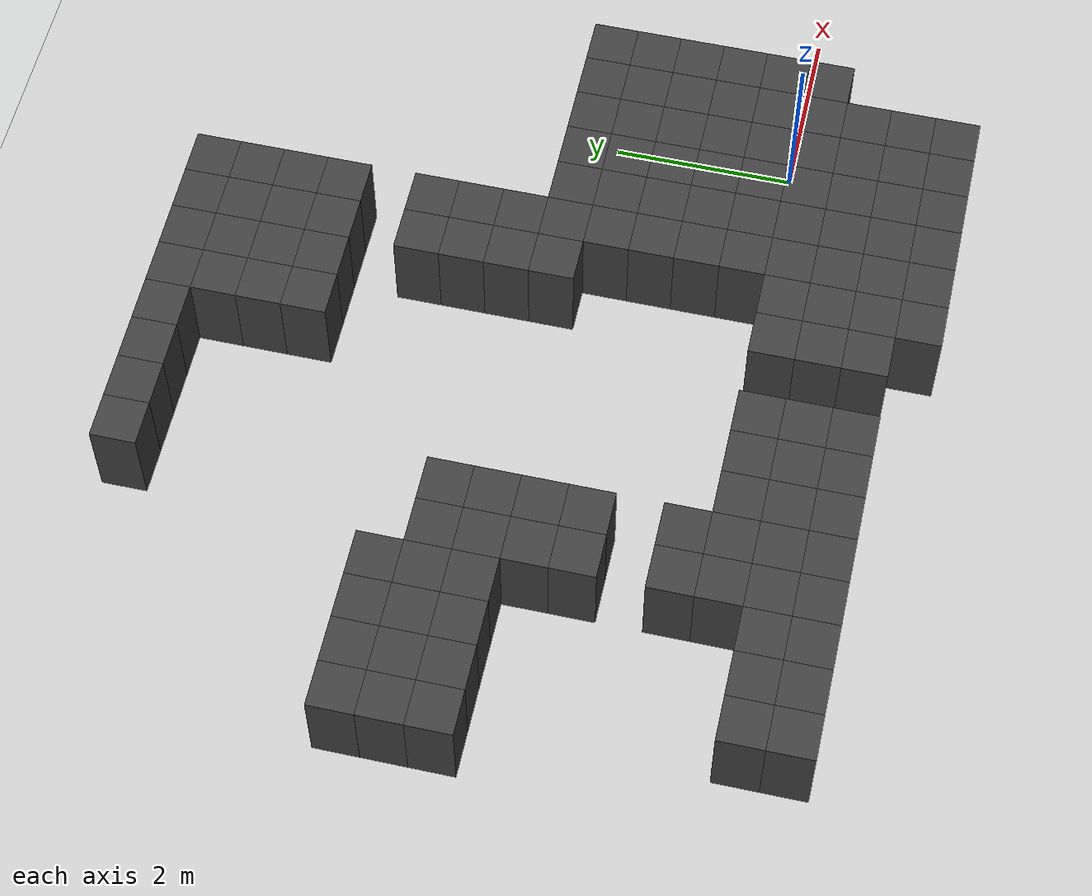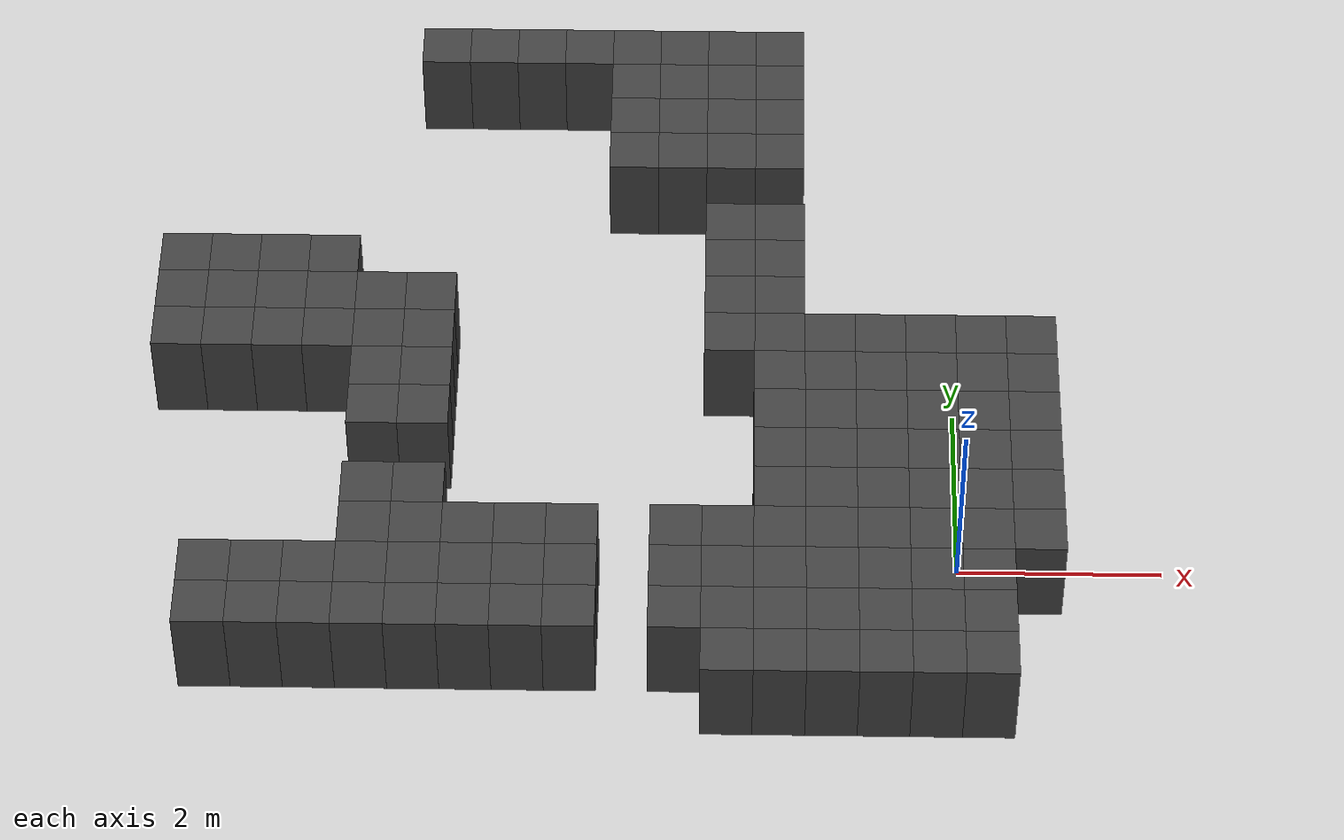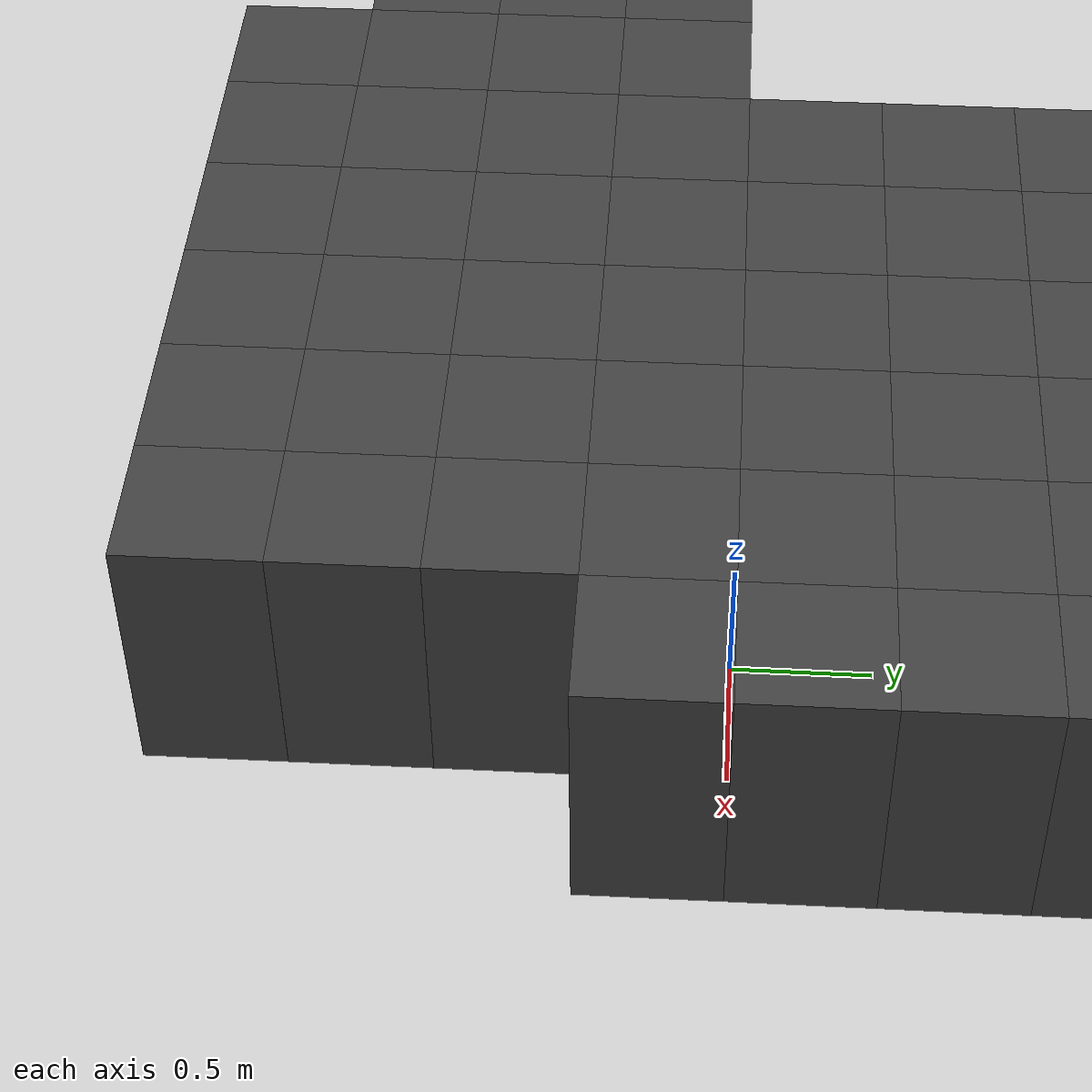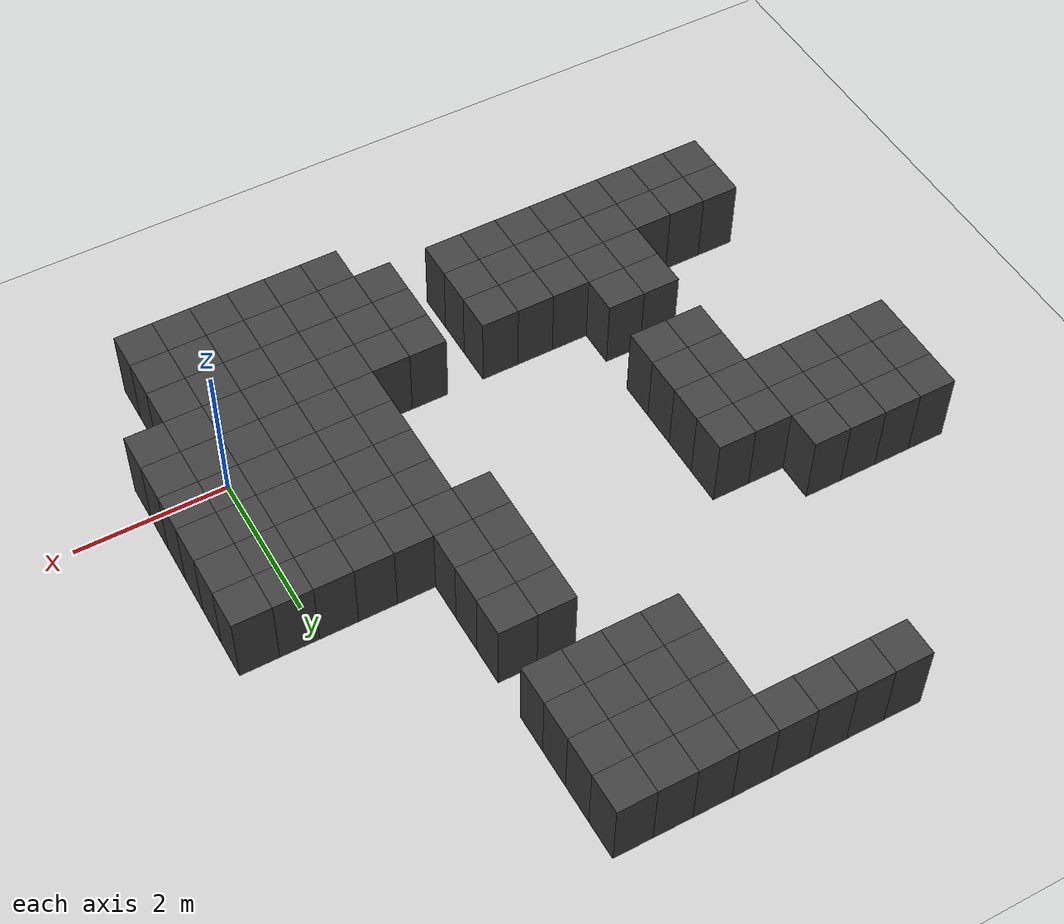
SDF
<sdf version="1.7">
 <world name="map_14980">
  <model name="ground_plane">
   <static>true</static>
   <link name="link">
    <collision name="collision">
     <geometry><plane><normal>0 0 1</normal><size>200 200</size></plane></geometry>
    </collision>
    <visual name="visual">
     <geometry><plane><normal>0 0 1</normal><size>200 200</size></plane></geometry>
     <material><ambient>0.8 0.8 0.8 1</ambient><diffuse>0.8 0.8 0.8 1</diffuse></material>
    </visual>
   </link>
  </model>
  <model name="maze_environment">
   <static>true</static>
   <link name="wall_469">
    <pose>-5.250 6.250 0.500 0 0 0</pose>
    <collision name="col"><geometry><box><size>0.5 0.5 1.0</size></box></geometry></collision>
    <visual name="vis">
     <geometry><box><size>0.5 0.5 1.0</size></box></geometry>
     <material><ambient>0.15 0.15 0.15 1</ambient><diffuse>0.25 0.25 0.25 1</diffuse></material>
    </visual>
   </link>
   <link name="wall_470">
    <pose>-4.750 6.250 0.500 0 0 0</pose>
    <collision name="col"><geometry><box><size>0.5 0.5 1.0</size></box></geometry></collision>
    <visual name="vis">
     <geometry><box><size>0.5 0.5 1.0</size></box></geometry>
     <material><ambient>0.15 0.15 0.15 1</ambient><diffuse>0.25 0.25 0.25 1</diffuse></material>
    </visual>
   </link>
   <link name="wall_471">
    <pose>-4.250 6.250 0.500 0 0 0</pose>
    <collision name="col"><geometry><box><size>0.5 0.5 1.0</size></box></geometry></collision>
    <visual name="vis">
     <geometry><box><size>0.5 0.5 1.0</size></box></geometry>
     <material><ambient>0.15 0.15 0.15 1</ambient><diffuse>0.25 0.25 0.25 1</diffuse></material>
    </visual>
   </link>
   <link name="wall_472">
    <pose>-3.750 6.250 0.500 0 0 0</pose>
    <collision name="col"><geometry><box><size>0.5 0.5 1.0</size></box></geometry></collision>
    <visual name="vis">
     <geometry><box><size>0.5 0.5 1.0</size></box></geometry>
     <material><ambient>0.15 0.15 0.15 1</ambient><diffuse>0.25 0.25 0.25 1</diffuse></material>
    </visual>
   </link>
   <link name="wall_473">
    <pose>-3.250 6.250 0.500 0 0 0</pose>
    <collision name="col"><geometry><box><size>0.5 0.5 1.0</size></box></geometry></collision>
    <visual name="vis">
     <geometry><box><size>0.5 0.5 1.0</size></box></geometry>
     <material><ambient>0.15 0.15 0.15 1</ambient><diffuse>0.25 0.25 0.25 1</diffuse></material>
    </visual>
   </link>
   <link name="wall_474">
    <pose>-2.750 6.250 0.500 0 0 0</pose>
    <collision name="col"><geometry><box><size>0.5 0.5 1.0</size></box></geometry></collision>
    <visual name="vis">
     <geometry><box><size>0.5 0.5 1.0</size></box></geometry>
     <material><ambient>0.15 0.15 0.15 1</ambient><diffuse>0.25 0.25 0.25 1</diffuse></material>
    </visual>
   </link>
   <link name="wall_475">
    <pose>-2.250 6.250 0.500 0 0 0</pose>
    <collision name="col"><geometry><box><size>0.5 0.5 1.0</size></box></geometry></collision>
    <visual name="vis">
     <geometry><box><size>0.5 0.5 1.0</size></box></geometry>
     <material><ambient>0.15 0.15 0.15 1</ambient><diffuse>0.25 0.25 0.25 1</diffuse></material>
    </visual>
   </link>
   <link name="wall_476">
    <pose>-1.750 6.250 0.500 0 0 0</pose>
    <collision name="col"><geometry><box><size>0.5 0.5 1.0</size></box></geometry></collision>
    <visual name="vis">
     <geometry><box><size>0.5 0.5 1.0</size></box></geometry>
     <material><ambient>0.15 0.15 0.15 1</ambient><diffuse>0.25 0.25 0.25 1</diffuse></material>
    </visual>
   </link>
   <link name="wall_506">
    <pose>-3.250 5.750 0.500 0 0 0</pose>
    <collision name="col"><geometry><box><size>0.5 0.5 1.0</size></box></geometry></collision>
    <visual name="vis">
     <geometry><box><size>0.5 0.5 1.0</size></box></geometry>
     <material><ambient>0.15 0.15 0.15 1</ambient><diffuse>0.25 0.25 0.25 1</diffuse></material>
    </visual>
   </link>
   <link name="wall_507">
    <pose>-2.750 5.750 0.500 0 0 0</pose>
    <collision name="col"><geometry><box><size>0.5 0.5 1.0</size></box></geometry></collision>
    <visual name="vis">
     <geometry><box><size>0.5 0.5 1.0</size></box></geometry>
     <material><ambient>0.15 0.15 0.15 1</ambient><diffuse>0.25 0.25 0.25 1</diffuse></material>
    </visual>
   </link>
   <link name="wall_508">
    <pose>-2.250 5.750 0.500 0 0 0</pose>
    <collision name="col"><geometry><box><size>0.5 0.5 1.0</size></box></geometry></collision>
    <visual name="vis">
     <geometry><box><size>0.5 0.5 1.0</size></box></geometry>
     <material><ambient>0.15 0.15 0.15 1</ambient><diffuse>0.25 0.25 0.25 1</diffuse></material>
    </visual>
   </link>
   <link name="wall_509">
    <pose>-1.750 5.750 0.500 0 0 0</pose>
    <collision name="col"><geometry><box><size>0.5 0.5 1.0</size></box></geometry></collision>
    <visual name="vis">
     <geometry><box><size>0.5 0.5 1.0</size></box></geometry>
     <material><ambient>0.15 0.15 0.15 1</ambient><diffuse>0.25 0.25 0.25 1</diffuse></material>
    </visual>
   </link>
   <link name="wall_539">
    <pose>-3.250 5.250 0.500 0 0 0</pose>
    <collision name="col"><geometry><box><size>0.5 0.5 1.0</size></box></geometry></collision>
    <visual name="vis">
     <geometry><box><size>0.5 0.5 1.0</size></box></geometry>
     <material><ambient>0.15 0.15 0.15 1</ambient><diffuse>0.25 0.25 0.25 1</diffuse></material>
    </visual>
   </link>
   <link name="wall_540">
    <pose>-2.750 5.250 0.500 0 0 0</pose>
    <collision name="col"><geometry><box><size>0.5 0.5 1.0</size></box></geometry></collision>
    <visual name="vis">
     <geometry><box><size>0.5 0.5 1.0</size></box></geometry>
     <material><ambient>0.15 0.15 0.15 1</ambient><diffuse>0.25 0.25 0.25 1</diffuse></material>
    </visual>
   </link>
   <link name="wall_541">
    <pose>-2.250 5.250 0.500 0 0 0</pose>
    <collision name="col"><geometry><box><size>0.5 0.5 1.0</size></box></geometry></collision>
    <visual name="vis">
     <geometry><box><size>0.5 0.5 1.0</size></box></geometry>
     <material><ambient>0.15 0.15 0.15 1</ambient><diffuse>0.25 0.25 0.25 1</diffuse></material>
    </visual>
   </link>
   <link name="wall_542">
    <pose>-1.750 5.250 0.500 0 0 0</pose>
    <collision name="col"><geometry><box><size>0.5 0.5 1.0</size></box></geometry></collision>
    <visual name="vis">
     <geometry><box><size>0.5 0.5 1.0</size></box></geometry>
     <material><ambient>0.15 0.15 0.15 1</ambient><diffuse>0.25 0.25 0.25 1</diffuse></material>
    </visual>
   </link>
   <link name="wall_566">
    <pose>-3.250 4.750 0.500 0 0 0</pose>
    <collision name="col"><geometry><box><size>0.5 0.5 1.0</size></box></geometry></collision>
    <visual name="vis">
     <geometry><box><size>0.5 0.5 1.0</size></box></geometry>
     <material><ambient>0.15 0.15 0.15 1</ambient><diffuse>0.25 0.25 0.25 1</diffuse></material>
    </visual>
   </link>
   <link name="wall_567">
    <pose>-2.750 4.750 0.500 0 0 0</pose>
    <collision name="col"><geometry><box><size>0.5 0.5 1.0</size></box></geometry></collision>
    <visual name="vis">
     <geometry><box><size>0.5 0.5 1.0</size></box></geometry>
     <material><ambient>0.15 0.15 0.15 1</ambient><diffuse>0.25 0.25 0.25 1</diffuse></material>
    </visual>
   </link>
   <link name="wall_568">
    <pose>-2.250 4.750 0.500 0 0 0</pose>
    <collision name="col"><geometry><box><size>0.5 0.5 1.0</size></box></geometry></collision>
    <visual name="vis">
     <geometry><box><size>0.5 0.5 1.0</size></box></geometry>
     <material><ambient>0.15 0.15 0.15 1</ambient><diffuse>0.25 0.25 0.25 1</diffuse></material>
    </visual>
   </link>
   <link name="wall_569">
    <pose>-1.750 4.750 0.500 0 0 0</pose>
    <collision name="col"><geometry><box><size>0.5 0.5 1.0</size></box></geometry></collision>
    <visual name="vis">
     <geometry><box><size>0.5 0.5 1.0</size></box></geometry>
     <material><ambient>0.15 0.15 0.15 1</ambient><diffuse>0.25 0.25 0.25 1</diffuse></material>
    </visual>
   </link>
   <link name="wall_615">
    <pose>-2.250 3.750 0.500 0 0 0</pose>
    <collision name="col"><geometry><box><size>0.5 0.5 1.0</size></box></geometry></collision>
    <visual name="vis">
     <geometry><box><size>0.5 0.5 1.0</size></box></geometry>
     <material><ambient>0.15 0.15 0.15 1</ambient><diffuse>0.25 0.25 0.25 1</diffuse></material>
    </visual>
   </link>
   <link name="wall_616">
    <pose>-1.750 3.750 0.500 0 0 0</pose>
    <collision name="col"><geometry><box><size>0.5 0.5 1.0</size></box></geometry></collision>
    <visual name="vis">
     <geometry><box><size>0.5 0.5 1.0</size></box></geometry>
     <material><ambient>0.15 0.15 0.15 1</ambient><diffuse>0.25 0.25 0.25 1</diffuse></material>
    </visual>
   </link>
   <link name="wall_641">
    <pose>-7.750 3.250 0.500 0 0 0</pose>
    <collision name="col"><geometry><box><size>0.5 0.5 1.0</size></box></geometry></collision>
    <visual name="vis">
     <geometry><box><size>0.5 0.5 1.0</size></box></geometry>
     <material><ambient>0.15 0.15 0.15 1</ambient><diffuse>0.25 0.25 0.25 1</diffuse></material>
    </visual>
   </link>
   <link name="wall_642">
    <pose>-7.250 3.250 0.500 0 0 0</pose>
    <collision name="col"><geometry><box><size>0.5 0.5 1.0</size></box></geometry></collision>
    <visual name="vis">
     <geometry><box><size>0.5 0.5 1.0</size></box></geometry>
     <material><ambient>0.15 0.15 0.15 1</ambient><diffuse>0.25 0.25 0.25 1</diffuse></material>
    </visual>
   </link>
   <link name="wall_643">
    <pose>-6.750 3.250 0.500 0 0 0</pose>
    <collision name="col"><geometry><box><size>0.5 0.5 1.0</size></box></geometry></collision>
    <visual name="vis">
     <geometry><box><size>0.5 0.5 1.0</size></box></geometry>
     <material><ambient>0.15 0.15 0.15 1</ambient><diffuse>0.25 0.25 0.25 1</diffuse></material>
    </visual>
   </link>
   <link name="wall_644">
    <pose>-6.250 3.250 0.500 0 0 0</pose>
    <collision name="col"><geometry><box><size>0.5 0.5 1.0</size></box></geometry></collision>
    <visual name="vis">
     <geometry><box><size>0.5 0.5 1.0</size></box></geometry>
     <material><ambient>0.15 0.15 0.15 1</ambient><diffuse>0.25 0.25 0.25 1</diffuse></material>
    </visual>
   </link>
   <link name="wall_645">
    <pose>-2.250 3.250 0.500 0 0 0</pose>
    <collision name="col"><geometry><box><size>0.5 0.5 1.0</size></box></geometry></collision>
    <visual name="vis">
     <geometry><box><size>0.5 0.5 1.0</size></box></geometry>
     <material><ambient>0.15 0.15 0.15 1</ambient><diffuse>0.25 0.25 0.25 1</diffuse></material>
    </visual>
   </link>
   <link name="wall_646">
    <pose>-1.750 3.250 0.500 0 0 0</pose>
    <collision name="col"><geometry><box><size>0.5 0.5 1.0</size></box></geometry></collision>
    <visual name="vis">
     <geometry><box><size>0.5 0.5 1.0</size></box></geometry>
     <material><ambient>0.15 0.15 0.15 1</ambient><diffuse>0.25 0.25 0.25 1</diffuse></material>
    </visual>
   </link>
   <link name="wall_676">
    <pose>-7.750 2.750 0.500 0 0 0</pose>
    <collision name="col"><geometry><box><size>0.5 0.5 1.0</size></box></geometry></collision>
    <visual name="vis">
     <geometry><box><size>0.5 0.5 1.0</size></box></geometry>
     <material><ambient>0.15 0.15 0.15 1</ambient><diffuse>0.25 0.25 0.25 1</diffuse></material>
    </visual>
   </link>
   <link name="wall_677">
    <pose>-7.250 2.750 0.500 0 0 0</pose>
    <collision name="col"><geometry><box><size>0.5 0.5 1.0</size></box></geometry></collision>
    <visual name="vis">
     <geometry><box><size>0.5 0.5 1.0</size></box></geometry>
     <material><ambient>0.15 0.15 0.15 1</ambient><diffuse>0.25 0.25 0.25 1</diffuse></material>
    </visual>
   </link>
   <link name="wall_678">
    <pose>-6.750 2.750 0.500 0 0 0</pose>
    <collision name="col"><geometry><box><size>0.5 0.5 1.0</size></box></geometry></collision>
    <visual name="vis">
     <geometry><box><size>0.5 0.5 1.0</size></box></geometry>
     <material><ambient>0.15 0.15 0.15 1</ambient><diffuse>0.25 0.25 0.25 1</diffuse></material>
    </visual>
   </link>
   <link name="wall_679">
    <pose>-6.250 2.750 0.500 0 0 0</pose>
    <collision name="col"><geometry><box><size>0.5 0.5 1.0</size></box></geometry></collision>
    <visual name="vis">
     <geometry><box><size>0.5 0.5 1.0</size></box></geometry>
     <material><ambient>0.15 0.15 0.15 1</ambient><diffuse>0.25 0.25 0.25 1</diffuse></material>
    </visual>
   </link>
   <link name="wall_680">
    <pose>-5.750 2.750 0.500 0 0 0</pose>
    <collision name="col"><geometry><box><size>0.5 0.5 1.0</size></box></geometry></collision>
    <visual name="vis">
     <geometry><box><size>0.5 0.5 1.0</size></box></geometry>
     <material><ambient>0.15 0.15 0.15 1</ambient><diffuse>0.25 0.25 0.25 1</diffuse></material>
    </visual>
   </link>
   <link name="wall_681">
    <pose>-5.250 2.750 0.500 0 0 0</pose>
    <collision name="col"><geometry><box><size>0.5 0.5 1.0</size></box></geometry></collision>
    <visual name="vis">
     <geometry><box><size>0.5 0.5 1.0</size></box></geometry>
     <material><ambient>0.15 0.15 0.15 1</ambient><diffuse>0.25 0.25 0.25 1</diffuse></material>
    </visual>
   </link>
   <link name="wall_682">
    <pose>-2.250 2.750 0.500 0 0 0</pose>
    <collision name="col"><geometry><box><size>0.5 0.5 1.0</size></box></geometry></collision>
    <visual name="vis">
     <geometry><box><size>0.5 0.5 1.0</size></box></geometry>
     <material><ambient>0.15 0.15 0.15 1</ambient><diffuse>0.25 0.25 0.25 1</diffuse></material>
    </visual>
   </link>
   <link name="wall_683">
    <pose>-1.750 2.750 0.500 0 0 0</pose>
    <collision name="col"><geometry><box><size>0.5 0.5 1.0</size></box></geometry></collision>
    <visual name="vis">
     <geometry><box><size>0.5 0.5 1.0</size></box></geometry>
     <material><ambient>0.15 0.15 0.15 1</ambient><diffuse>0.25 0.25 0.25 1</diffuse></material>
    </visual>
   </link>
   <link name="wall_708">
    <pose>-7.750 2.250 0.500 0 0 0</pose>
    <collision name="col"><geometry><box><size>0.5 0.5 1.0</size></box></geometry></collision>
    <visual name="vis">
     <geometry><box><size>0.5 0.5 1.0</size></box></geometry>
     <material><ambient>0.15 0.15 0.15 1</ambient><diffuse>0.25 0.25 0.25 1</diffuse></material>
    </visual>
   </link>
   <link name="wall_709">
    <pose>-7.250 2.250 0.500 0 0 0</pose>
    <collision name="col"><geometry><box><size>0.5 0.5 1.0</size></box></geometry></collision>
    <visual name="vis">
     <geometry><box><size>0.5 0.5 1.0</size></box></geometry>
     <material><ambient>0.15 0.15 0.15 1</ambient><diffuse>0.25 0.25 0.25 1</diffuse></material>
    </visual>
   </link>
   <link name="wall_710">
    <pose>-6.750 2.250 0.500 0 0 0</pose>
    <collision name="col"><geometry><box><size>0.5 0.5 1.0</size></box></geometry></collision>
    <visual name="vis">
     <geometry><box><size>0.5 0.5 1.0</size></box></geometry>
     <material><ambient>0.15 0.15 0.15 1</ambient><diffuse>0.25 0.25 0.25 1</diffuse></material>
    </visual>
   </link>
   <link name="wall_711">
    <pose>-6.250 2.250 0.500 0 0 0</pose>
    <collision name="col"><geometry><box><size>0.5 0.5 1.0</size></box></geometry></collision>
    <visual name="vis">
     <geometry><box><size>0.5 0.5 1.0</size></box></geometry>
     <material><ambient>0.15 0.15 0.15 1</ambient><diffuse>0.25 0.25 0.25 1</diffuse></material>
    </visual>
   </link>
   <link name="wall_712">
    <pose>-5.750 2.250 0.500 0 0 0</pose>
    <collision name="col"><geometry><box><size>0.5 0.5 1.0</size></box></geometry></collision>
    <visual name="vis">
     <geometry><box><size>0.5 0.5 1.0</size></box></geometry>
     <material><ambient>0.15 0.15 0.15 1</ambient><diffuse>0.25 0.25 0.25 1</diffuse></material>
    </visual>
   </link>
   <link name="wall_713">
    <pose>-5.250 2.250 0.500 0 0 0</pose>
    <collision name="col"><geometry><box><size>0.5 0.5 1.0</size></box></geometry></collision>
    <visual name="vis">
     <geometry><box><size>0.5 0.5 1.0</size></box></geometry>
     <material><ambient>0.15 0.15 0.15 1</ambient><diffuse>0.25 0.25 0.25 1</diffuse></material>
    </visual>
   </link>
   <link name="wall_714">
    <pose>-2.250 2.250 0.500 0 0 0</pose>
    <collision name="col"><geometry><box><size>0.5 0.5 1.0</size></box></geometry></collision>
    <visual name="vis">
     <geometry><box><size>0.5 0.5 1.0</size></box></geometry>
     <material><ambient>0.15 0.15 0.15 1</ambient><diffuse>0.25 0.25 0.25 1</diffuse></material>
    </visual>
   </link>
   <link name="wall_715">
    <pose>-1.750 2.250 0.500 0 0 0</pose>
    <collision name="col"><geometry><box><size>0.5 0.5 1.0</size></box></geometry></collision>
    <visual name="vis">
     <geometry><box><size>0.5 0.5 1.0</size></box></geometry>
     <material><ambient>0.15 0.15 0.15 1</ambient><diffuse>0.25 0.25 0.25 1</diffuse></material>
    </visual>
   </link>
   <link name="wall_716">
    <pose>-1.250 2.250 0.500 0 0 0</pose>
    <collision name="col"><geometry><box><size>0.5 0.5 1.0</size></box></geometry></collision>
    <visual name="vis">
     <geometry><box><size>0.5 0.5 1.0</size></box></geometry>
     <material><ambient>0.15 0.15 0.15 1</ambient><diffuse>0.25 0.25 0.25 1</diffuse></material>
    </visual>
   </link>
   <link name="wall_717">
    <pose>-0.750 2.250 0.500 0 0 0</pose>
    <collision name="col"><geometry><box><size>0.5 0.5 1.0</size></box></geometry></collision>
    <visual name="vis">
     <geometry><box><size>0.5 0.5 1.0</size></box></geometry>
     <material><ambient>0.15 0.15 0.15 1</ambient><diffuse>0.25 0.25 0.25 1</diffuse></material>
    </visual>
   </link>
   <link name="wall_718">
    <pose>-0.250 2.250 0.500 0 0 0</pose>
    <collision name="col"><geometry><box><size>0.5 0.5 1.0</size></box></geometry></collision>
    <visual name="vis">
     <geometry><box><size>0.5 0.5 1.0</size></box></geometry>
     <material><ambient>0.15 0.15 0.15 1</ambient><diffuse>0.25 0.25 0.25 1</diffuse></material>
    </visual>
   </link>
   <link name="wall_719">
    <pose>0.250 2.250 0.500 0 0 0</pose>
    <collision name="col"><geometry><box><size>0.5 0.5 1.0</size></box></geometry></collision>
    <visual name="vis">
     <geometry><box><size>0.5 0.5 1.0</size></box></geometry>
     <material><ambient>0.15 0.15 0.15 1</ambient><diffuse>0.25 0.25 0.25 1</diffuse></material>
    </visual>
   </link>
   <link name="wall_720">
    <pose>0.750 2.250 0.500 0 0 0</pose>
    <collision name="col"><geometry><box><size>0.5 0.5 1.0</size></box></geometry></collision>
    <visual name="vis">
     <geometry><box><size>0.5 0.5 1.0</size></box></geometry>
     <material><ambient>0.15 0.15 0.15 1</ambient><diffuse>0.25 0.25 0.25 1</diffuse></material>
    </visual>
   </link>
   <link name="wall_747">
    <pose>-5.750 1.750 0.500 0 0 0</pose>
    <collision name="col"><geometry><box><size>0.5 0.5 1.0</size></box></geometry></collision>
    <visual name="vis">
     <geometry><box><size>0.5 0.5 1.0</size></box></geometry>
     <material><ambient>0.15 0.15 0.15 1</ambient><diffuse>0.25 0.25 0.25 1</diffuse></material>
    </visual>
   </link>
   <link name="wall_748">
    <pose>-5.250 1.750 0.500 0 0 0</pose>
    <collision name="col"><geometry><box><size>0.5 0.5 1.0</size></box></geometry></collision>
    <visual name="vis">
     <geometry><box><size>0.5 0.5 1.0</size></box></geometry>
     <material><ambient>0.15 0.15 0.15 1</ambient><diffuse>0.25 0.25 0.25 1</diffuse></material>
    </visual>
   </link>
   <link name="wall_749">
    <pose>-1.750 1.750 0.500 0 0 0</pose>
    <collision name="col"><geometry><box><size>0.5 0.5 1.0</size></box></geometry></collision>
    <visual name="vis">
     <geometry><box><size>0.5 0.5 1.0</size></box></geometry>
     <material><ambient>0.15 0.15 0.15 1</ambient><diffuse>0.25 0.25 0.25 1</diffuse></material>
    </visual>
   </link>
   <link name="wall_750">
    <pose>-1.250 1.750 0.500 0 0 0</pose>
    <collision name="col"><geometry><box><size>0.5 0.5 1.0</size></box></geometry></collision>
    <visual name="vis">
     <geometry><box><size>0.5 0.5 1.0</size></box></geometry>
     <material><ambient>0.15 0.15 0.15 1</ambient><diffuse>0.25 0.25 0.25 1</diffuse></material>
    </visual>
   </link>
   <link name="wall_751">
    <pose>-0.750 1.750 0.500 0 0 0</pose>
    <collision name="col"><geometry><box><size>0.5 0.5 1.0</size></box></geometry></collision>
    <visual name="vis">
     <geometry><box><size>0.5 0.5 1.0</size></box></geometry>
     <material><ambient>0.15 0.15 0.15 1</ambient><diffuse>0.25 0.25 0.25 1</diffuse></material>
    </visual>
   </link>
   <link name="wall_752">
    <pose>-0.250 1.750 0.500 0 0 0</pose>
    <collision name="col"><geometry><box><size>0.5 0.5 1.0</size></box></geometry></collision>
    <visual name="vis">
     <geometry><box><size>0.5 0.5 1.0</size></box></geometry>
     <material><ambient>0.15 0.15 0.15 1</ambient><diffuse>0.25 0.25 0.25 1</diffuse></material>
    </visual>
   </link>
   <link name="wall_753">
    <pose>0.250 1.750 0.500 0 0 0</pose>
    <collision name="col"><geometry><box><size>0.5 0.5 1.0</size></box></geometry></collision>
    <visual name="vis">
     <geometry><box><size>0.5 0.5 1.0</size></box></geometry>
     <material><ambient>0.15 0.15 0.15 1</ambient><diffuse>0.25 0.25 0.25 1</diffuse></material>
    </visual>
   </link>
   <link name="wall_754">
    <pose>0.750 1.750 0.500 0 0 0</pose>
    <collision name="col"><geometry><box><size>0.5 0.5 1.0</size></box></geometry></collision>
    <visual name="vis">
     <geometry><box><size>0.5 0.5 1.0</size></box></geometry>
     <material><ambient>0.15 0.15 0.15 1</ambient><diffuse>0.25 0.25 0.25 1</diffuse></material>
    </visual>
   </link>
   <link name="wall_779">
    <pose>-5.750 1.250 0.500 0 0 0</pose>
    <collision name="col"><geometry><box><size>0.5 0.5 1.0</size></box></geometry></collision>
    <visual name="vis">
     <geometry><box><size>0.5 0.5 1.0</size></box></geometry>
     <material><ambient>0.15 0.15 0.15 1</ambient><diffuse>0.25 0.25 0.25 1</diffuse></material>
    </visual>
   </link>
   <link name="wall_780">
    <pose>-5.250 1.250 0.500 0 0 0</pose>
    <collision name="col"><geometry><box><size>0.5 0.5 1.0</size></box></geometry></collision>
    <visual name="vis">
     <geometry><box><size>0.5 0.5 1.0</size></box></geometry>
     <material><ambient>0.15 0.15 0.15 1</ambient><diffuse>0.25 0.25 0.25 1</diffuse></material>
    </visual>
   </link>
   <link name="wall_781">
    <pose>-1.750 1.250 0.500 0 0 0</pose>
    <collision name="col"><geometry><box><size>0.5 0.5 1.0</size></box></geometry></collision>
    <visual name="vis">
     <geometry><box><size>0.5 0.5 1.0</size></box></geometry>
     <material><ambient>0.15 0.15 0.15 1</ambient><diffuse>0.25 0.25 0.25 1</diffuse></material>
    </visual>
   </link>
   <link name="wall_782">
    <pose>-1.250 1.250 0.500 0 0 0</pose>
    <collision name="col"><geometry><box><size>0.5 0.5 1.0</size></box></geometry></collision>
    <visual name="vis">
     <geometry><box><size>0.5 0.5 1.0</size></box></geometry>
     <material><ambient>0.15 0.15 0.15 1</ambient><diffuse>0.25 0.25 0.25 1</diffuse></material>
    </visual>
   </link>
   <link name="wall_783">
    <pose>-0.750 1.250 0.500 0 0 0</pose>
    <collision name="col"><geometry><box><size>0.5 0.5 1.0</size></box></geometry></collision>
    <visual name="vis">
     <geometry><box><size>0.5 0.5 1.0</size></box></geometry>
     <material><ambient>0.15 0.15 0.15 1</ambient><diffuse>0.25 0.25 0.25 1</diffuse></material>
    </visual>
   </link>
   <link name="wall_784">
    <pose>-0.250 1.250 0.500 0 0 0</pose>
    <collision name="col"><geometry><box><size>0.5 0.5 1.0</size></box></geometry></collision>
    <visual name="vis">
     <geometry><box><size>0.5 0.5 1.0</size></box></geometry>
     <material><ambient>0.15 0.15 0.15 1</ambient><diffuse>0.25 0.25 0.25 1</diffuse></material>
    </visual>
   </link>
   <link name="wall_785">
    <pose>0.250 1.250 0.500 0 0 0</pose>
    <collision name="col"><geometry><box><size>0.5 0.5 1.0</size></box></geometry></collision>
    <visual name="vis">
     <geometry><box><size>0.5 0.5 1.0</size></box></geometry>
     <material><ambient>0.15 0.15 0.15 1</ambient><diffuse>0.25 0.25 0.25 1</diffuse></material>
    </visual>
   </link>
   <link name="wall_786">
    <pose>0.750 1.250 0.500 0 0 0</pose>
    <collision name="col"><geometry><box><size>0.5 0.5 1.0</size></box></geometry></collision>
    <visual name="vis">
     <geometry><box><size>0.5 0.5 1.0</size></box></geometry>
     <material><ambient>0.15 0.15 0.15 1</ambient><diffuse>0.25 0.25 0.25 1</diffuse></material>
    </visual>
   </link>
   <link name="wall_813">
    <pose>-1.750 0.750 0.500 0 0 0</pose>
    <collision name="col"><geometry><box><size>0.5 0.5 1.0</size></box></geometry></collision>
    <visual name="vis">
     <geometry><box><size>0.5 0.5 1.0</size></box></geometry>
     <material><ambient>0.15 0.15 0.15 1</ambient><diffuse>0.25 0.25 0.25 1</diffuse></material>
    </visual>
   </link>
   <link name="wall_814">
    <pose>-1.250 0.750 0.500 0 0 0</pose>
    <collision name="col"><geometry><box><size>0.5 0.5 1.0</size></box></geometry></collision>
    <visual name="vis">
     <geometry><box><size>0.5 0.5 1.0</size></box></geometry>
     <material><ambient>0.15 0.15 0.15 1</ambient><diffuse>0.25 0.25 0.25 1</diffuse></material>
    </visual>
   </link>
   <link name="wall_815">
    <pose>-0.750 0.750 0.500 0 0 0</pose>
    <collision name="col"><geometry><box><size>0.5 0.5 1.0</size></box></geometry></collision>
    <visual name="vis">
     <geometry><box><size>0.5 0.5 1.0</size></box></geometry>
     <material><ambient>0.15 0.15 0.15 1</ambient><diffuse>0.25 0.25 0.25 1</diffuse></material>
    </visual>
   </link>
   <link name="wall_816">
    <pose>-0.250 0.750 0.500 0 0 0</pose>
    <collision name="col"><geometry><box><size>0.5 0.5 1.0</size></box></geometry></collision>
    <visual name="vis">
     <geometry><box><size>0.5 0.5 1.0</size></box></geometry>
     <material><ambient>0.15 0.15 0.15 1</ambient><diffuse>0.25 0.25 0.25 1</diffuse></material>
    </visual>
   </link>
   <link name="wall_817">
    <pose>0.250 0.750 0.500 0 0 0</pose>
    <collision name="col"><geometry><box><size>0.5 0.5 1.0</size></box></geometry></collision>
    <visual name="vis">
     <geometry><box><size>0.5 0.5 1.0</size></box></geometry>
     <material><ambient>0.15 0.15 0.15 1</ambient><diffuse>0.25 0.25 0.25 1</diffuse></material>
    </visual>
   </link>
   <link name="wall_818">
    <pose>0.750 0.750 0.500 0 0 0</pose>
    <collision name="col"><geometry><box><size>0.5 0.5 1.0</size></box></geometry></collision>
    <visual name="vis">
     <geometry><box><size>0.5 0.5 1.0</size></box></geometry>
     <material><ambient>0.15 0.15 0.15 1</ambient><diffuse>0.25 0.25 0.25 1</diffuse></material>
    </visual>
   </link>
   <link name="wall_840">
    <pose>-5.750 0.250 0.500 0 0 0</pose>
    <collision name="col"><geometry><box><size>0.5 0.5 1.0</size></box></geometry></collision>
    <visual name="vis">
     <geometry><box><size>0.5 0.5 1.0</size></box></geometry>
     <material><ambient>0.15 0.15 0.15 1</ambient><diffuse>0.25 0.25 0.25 1</diffuse></material>
    </visual>
   </link>
   <link name="wall_841">
    <pose>-5.250 0.250 0.500 0 0 0</pose>
    <collision name="col"><geometry><box><size>0.5 0.5 1.0</size></box></geometry></collision>
    <visual name="vis">
     <geometry><box><size>0.5 0.5 1.0</size></box></geometry>
     <material><ambient>0.15 0.15 0.15 1</ambient><diffuse>0.25 0.25 0.25 1</diffuse></material>
    </visual>
   </link>
   <link name="wall_842">
    <pose>-1.750 0.250 0.500 0 0 0</pose>
    <collision name="col"><geometry><box><size>0.5 0.5 1.0</size></box></geometry></collision>
    <visual name="vis">
     <geometry><box><size>0.5 0.5 1.0</size></box></geometry>
     <material><ambient>0.15 0.15 0.15 1</ambient><diffuse>0.25 0.25 0.25 1</diffuse></material>
    </visual>
   </link>
   <link name="wall_843">
    <pose>-1.250 0.250 0.500 0 0 0</pose>
    <collision name="col"><geometry><box><size>0.5 0.5 1.0</size></box></geometry></collision>
    <visual name="vis">
     <geometry><box><size>0.5 0.5 1.0</size></box></geometry>
     <material><ambient>0.15 0.15 0.15 1</ambient><diffuse>0.25 0.25 0.25 1</diffuse></material>
    </visual>
   </link>
   <link name="wall_844">
    <pose>-0.750 0.250 0.500 0 0 0</pose>
    <collision name="col"><geometry><box><size>0.5 0.5 1.0</size></box></geometry></collision>
    <visual name="vis">
     <geometry><box><size>0.5 0.5 1.0</size></box></geometry>
     <material><ambient>0.15 0.15 0.15 1</ambient><diffuse>0.25 0.25 0.25 1</diffuse></material>
    </visual>
   </link>
   <link name="wall_845">
    <pose>-0.250 0.250 0.500 0 0 0</pose>
    <collision name="col"><geometry><box><size>0.5 0.5 1.0</size></box></geometry></collision>
    <visual name="vis">
     <geometry><box><size>0.5 0.5 1.0</size></box></geometry>
     <material><ambient>0.15 0.15 0.15 1</ambient><diffuse>0.25 0.25 0.25 1</diffuse></material>
    </visual>
   </link>
   <link name="wall_846">
    <pose>0.250 0.250 0.500 0 0 0</pose>
    <collision name="col"><geometry><box><size>0.5 0.5 1.0</size></box></geometry></collision>
    <visual name="vis">
     <geometry><box><size>0.5 0.5 1.0</size></box></geometry>
     <material><ambient>0.15 0.15 0.15 1</ambient><diffuse>0.25 0.25 0.25 1</diffuse></material>
    </visual>
   </link>
   <link name="wall_847">
    <pose>0.750 0.250 0.500 0 0 0</pose>
    <collision name="col"><geometry><box><size>0.5 0.5 1.0</size></box></geometry></collision>
    <visual name="vis">
     <geometry><box><size>0.5 0.5 1.0</size></box></geometry>
     <material><ambient>0.15 0.15 0.15 1</ambient><diffuse>0.25 0.25 0.25 1</diffuse></material>
    </visual>
   </link>
   <link name="wall_874">
    <pose>-5.750 -0.250 0.500 0 0 0</pose>
    <collision name="col"><geometry><box><size>0.5 0.5 1.0</size></box></geometry></collision>
    <visual name="vis">
     <geometry><box><size>0.5 0.5 1.0</size></box></geometry>
     <material><ambient>0.15 0.15 0.15 1</ambient><diffuse>0.25 0.25 0.25 1</diffuse></material>
    </visual>
   </link>
   <link name="wall_875">
    <pose>-5.250 -0.250 0.500 0 0 0</pose>
    <collision name="col"><geometry><box><size>0.5 0.5 1.0</size></box></geometry></collision>
    <visual name="vis">
     <geometry><box><size>0.5 0.5 1.0</size></box></geometry>
     <material><ambient>0.15 0.15 0.15 1</ambient><diffuse>0.25 0.25 0.25 1</diffuse></material>
    </visual>
   </link>
   <link name="wall_876">
    <pose>-4.750 -0.250 0.500 0 0 0</pose>
    <collision name="col"><geometry><box><size>0.5 0.5 1.0</size></box></geometry></collision>
    <visual name="vis">
     <geometry><box><size>0.5 0.5 1.0</size></box></geometry>
     <material><ambient>0.15 0.15 0.15 1</ambient><diffuse>0.25 0.25 0.25 1</diffuse></material>
    </visual>
   </link>
   <link name="wall_877">
    <pose>-4.250 -0.250 0.500 0 0 0</pose>
    <collision name="col"><geometry><box><size>0.5 0.5 1.0</size></box></geometry></collision>
    <visual name="vis">
     <geometry><box><size>0.5 0.5 1.0</size></box></geometry>
     <material><ambient>0.15 0.15 0.15 1</ambient><diffuse>0.25 0.25 0.25 1</diffuse></material>
    </visual>
   </link>
   <link name="wall_878">
    <pose>-3.750 -0.250 0.500 0 0 0</pose>
    <collision name="col"><geometry><box><size>0.5 0.5 1.0</size></box></geometry></collision>
    <visual name="vis">
     <geometry><box><size>0.5 0.5 1.0</size></box></geometry>
     <material><ambient>0.15 0.15 0.15 1</ambient><diffuse>0.25 0.25 0.25 1</diffuse></material>
    </visual>
   </link>
   <link name="wall_879">
    <pose>-2.750 -0.250 0.500 0 0 0</pose>
    <collision name="col"><geometry><box><size>0.5 0.5 1.0</size></box></geometry></collision>
    <visual name="vis">
     <geometry><box><size>0.5 0.5 1.0</size></box></geometry>
     <material><ambient>0.15 0.15 0.15 1</ambient><diffuse>0.25 0.25 0.25 1</diffuse></material>
    </visual>
   </link>
   <link name="wall_880">
    <pose>-2.250 -0.250 0.500 0 0 0</pose>
    <collision name="col"><geometry><box><size>0.5 0.5 1.0</size></box></geometry></collision>
    <visual name="vis">
     <geometry><box><size>0.5 0.5 1.0</size></box></geometry>
     <material><ambient>0.15 0.15 0.15 1</ambient><diffuse>0.25 0.25 0.25 1</diffuse></material>
    </visual>
   </link>
   <link name="wall_881">
    <pose>-1.750 -0.250 0.500 0 0 0</pose>
    <collision name="col"><geometry><box><size>0.5 0.5 1.0</size></box></geometry></collision>
    <visual name="vis">
     <geometry><box><size>0.5 0.5 1.0</size></box></geometry>
     <material><ambient>0.15 0.15 0.15 1</ambient><diffuse>0.25 0.25 0.25 1</diffuse></material>
    </visual>
   </link>
   <link name="wall_882">
    <pose>-1.250 -0.250 0.500 0 0 0</pose>
    <collision name="col"><geometry><box><size>0.5 0.5 1.0</size></box></geometry></collision>
    <visual name="vis">
     <geometry><box><size>0.5 0.5 1.0</size></box></geometry>
     <material><ambient>0.15 0.15 0.15 1</ambient><diffuse>0.25 0.25 0.25 1</diffuse></material>
    </visual>
   </link>
   <link name="wall_883">
    <pose>-0.750 -0.250 0.500 0 0 0</pose>
    <collision name="col"><geometry><box><size>0.5 0.5 1.0</size></box></geometry></collision>
    <visual name="vis">
     <geometry><box><size>0.5 0.5 1.0</size></box></geometry>
     <material><ambient>0.15 0.15 0.15 1</ambient><diffuse>0.25 0.25 0.25 1</diffuse></material>
    </visual>
   </link>
   <link name="wall_884">
    <pose>-0.250 -0.250 0.500 0 0 0</pose>
    <collision name="col"><geometry><box><size>0.5 0.5 1.0</size></box></geometry></collision>
    <visual name="vis">
     <geometry><box><size>0.5 0.5 1.0</size></box></geometry>
     <material><ambient>0.15 0.15 0.15 1</ambient><diffuse>0.25 0.25 0.25 1</diffuse></material>
    </visual>
   </link>
   <link name="wall_885">
    <pose>0.250 -0.250 0.500 0 0 0</pose>
    <collision name="col"><geometry><box><size>0.5 0.5 1.0</size></box></geometry></collision>
    <visual name="vis">
     <geometry><box><size>0.5 0.5 1.0</size></box></geometry>
     <material><ambient>0.15 0.15 0.15 1</ambient><diffuse>0.25 0.25 0.25 1</diffuse></material>
    </visual>
   </link>
   <link name="wall_886">
    <pose>0.750 -0.250 0.500 0 0 0</pose>
    <collision name="col"><geometry><box><size>0.5 0.5 1.0</size></box></geometry></collision>
    <visual name="vis">
     <geometry><box><size>0.5 0.5 1.0</size></box></geometry>
     <material><ambient>0.15 0.15 0.15 1</ambient><diffuse>0.25 0.25 0.25 1</diffuse></material>
    </visual>
   </link>
   <link name="wall_914">
    <pose>-7.250 -0.750 0.500 0 0 0</pose>
    <collision name="col"><geometry><box><size>0.5 0.5 1.0</size></box></geometry></collision>
    <visual name="vis">
     <geometry><box><size>0.5 0.5 1.0</size></box></geometry>
     <material><ambient>0.15 0.15 0.15 1</ambient><diffuse>0.25 0.25 0.25 1</diffuse></material>
    </visual>
   </link>
   <link name="wall_915">
    <pose>-6.750 -0.750 0.500 0 0 0</pose>
    <collision name="col"><geometry><box><size>0.5 0.5 1.0</size></box></geometry></collision>
    <visual name="vis">
     <geometry><box><size>0.5 0.5 1.0</size></box></geometry>
     <material><ambient>0.15 0.15 0.15 1</ambient><diffuse>0.25 0.25 0.25 1</diffuse></material>
    </visual>
   </link>
   <link name="wall_916">
    <pose>-6.250 -0.750 0.500 0 0 0</pose>
    <collision name="col"><geometry><box><size>0.5 0.5 1.0</size></box></geometry></collision>
    <visual name="vis">
     <geometry><box><size>0.5 0.5 1.0</size></box></geometry>
     <material><ambient>0.15 0.15 0.15 1</ambient><diffuse>0.25 0.25 0.25 1</diffuse></material>
    </visual>
   </link>
   <link name="wall_917">
    <pose>-5.750 -0.750 0.500 0 0 0</pose>
    <collision name="col"><geometry><box><size>0.5 0.5 1.0</size></box></geometry></collision>
    <visual name="vis">
     <geometry><box><size>0.5 0.5 1.0</size></box></geometry>
     <material><ambient>0.15 0.15 0.15 1</ambient><diffuse>0.25 0.25 0.25 1</diffuse></material>
    </visual>
   </link>
   <link name="wall_918">
    <pose>-5.250 -0.750 0.500 0 0 0</pose>
    <collision name="col"><geometry><box><size>0.5 0.5 1.0</size></box></geometry></collision>
    <visual name="vis">
     <geometry><box><size>0.5 0.5 1.0</size></box></geometry>
     <material><ambient>0.15 0.15 0.15 1</ambient><diffuse>0.25 0.25 0.25 1</diffuse></material>
    </visual>
   </link>
   <link name="wall_919">
    <pose>-4.750 -0.750 0.500 0 0 0</pose>
    <collision name="col"><geometry><box><size>0.5 0.5 1.0</size></box></geometry></collision>
    <visual name="vis">
     <geometry><box><size>0.5 0.5 1.0</size></box></geometry>
     <material><ambient>0.15 0.15 0.15 1</ambient><diffuse>0.25 0.25 0.25 1</diffuse></material>
    </visual>
   </link>
   <link name="wall_920">
    <pose>-4.250 -0.750 0.500 0 0 0</pose>
    <collision name="col"><geometry><box><size>0.5 0.5 1.0</size></box></geometry></collision>
    <visual name="vis">
     <geometry><box><size>0.5 0.5 1.0</size></box></geometry>
     <material><ambient>0.15 0.15 0.15 1</ambient><diffuse>0.25 0.25 0.25 1</diffuse></material>
    </visual>
   </link>
   <link name="wall_921">
    <pose>-3.750 -0.750 0.500 0 0 0</pose>
    <collision name="col"><geometry><box><size>0.5 0.5 1.0</size></box></geometry></collision>
    <visual name="vis">
     <geometry><box><size>0.5 0.5 1.0</size></box></geometry>
     <material><ambient>0.15 0.15 0.15 1</ambient><diffuse>0.25 0.25 0.25 1</diffuse></material>
    </visual>
   </link>
   <link name="wall_922">
    <pose>-2.750 -0.750 0.500 0 0 0</pose>
    <collision name="col"><geometry><box><size>0.5 0.5 1.0</size></box></geometry></collision>
    <visual name="vis">
     <geometry><box><size>0.5 0.5 1.0</size></box></geometry>
     <material><ambient>0.15 0.15 0.15 1</ambient><diffuse>0.25 0.25 0.25 1</diffuse></material>
    </visual>
   </link>
   <link name="wall_923">
    <pose>-2.250 -0.750 0.500 0 0 0</pose>
    <collision name="col"><geometry><box><size>0.5 0.5 1.0</size></box></geometry></collision>
    <visual name="vis">
     <geometry><box><size>0.5 0.5 1.0</size></box></geometry>
     <material><ambient>0.15 0.15 0.15 1</ambient><diffuse>0.25 0.25 0.25 1</diffuse></material>
    </visual>
   </link>
   <link name="wall_924">
    <pose>-1.750 -0.750 0.500 0 0 0</pose>
    <collision name="col"><geometry><box><size>0.5 0.5 1.0</size></box></geometry></collision>
    <visual name="vis">
     <geometry><box><size>0.5 0.5 1.0</size></box></geometry>
     <material><ambient>0.15 0.15 0.15 1</ambient><diffuse>0.25 0.25 0.25 1</diffuse></material>
    </visual>
   </link>
   <link name="wall_925">
    <pose>-1.250 -0.750 0.500 0 0 0</pose>
    <collision name="col"><geometry><box><size>0.5 0.5 1.0</size></box></geometry></collision>
    <visual name="vis">
     <geometry><box><size>0.5 0.5 1.0</size></box></geometry>
     <material><ambient>0.15 0.15 0.15 1</ambient><diffuse>0.25 0.25 0.25 1</diffuse></material>
    </visual>
   </link>
   <link name="wall_926">
    <pose>-0.750 -0.750 0.500 0 0 0</pose>
    <collision name="col"><geometry><box><size>0.5 0.5 1.0</size></box></geometry></collision>
    <visual name="vis">
     <geometry><box><size>0.5 0.5 1.0</size></box></geometry>
     <material><ambient>0.15 0.15 0.15 1</ambient><diffuse>0.25 0.25 0.25 1</diffuse></material>
    </visual>
   </link>
   <link name="wall_927">
    <pose>-0.250 -0.750 0.500 0 0 0</pose>
    <collision name="col"><geometry><box><size>0.5 0.5 1.0</size></box></geometry></collision>
    <visual name="vis">
     <geometry><box><size>0.5 0.5 1.0</size></box></geometry>
     <material><ambient>0.15 0.15 0.15 1</ambient><diffuse>0.25 0.25 0.25 1</diffuse></material>
    </visual>
   </link>
   <link name="wall_928">
    <pose>0.250 -0.750 0.500 0 0 0</pose>
    <collision name="col"><geometry><box><size>0.5 0.5 1.0</size></box></geometry></collision>
    <visual name="vis">
     <geometry><box><size>0.5 0.5 1.0</size></box></geometry>
     <material><ambient>0.15 0.15 0.15 1</ambient><diffuse>0.25 0.25 0.25 1</diffuse></material>
    </visual>
   </link>
   <link name="wall_957">
    <pose>-7.250 -1.250 0.500 0 0 0</pose>
    <collision name="col"><geometry><box><size>0.5 0.5 1.0</size></box></geometry></collision>
    <visual name="vis">
     <geometry><box><size>0.5 0.5 1.0</size></box></geometry>
     <material><ambient>0.15 0.15 0.15 1</ambient><diffuse>0.25 0.25 0.25 1</diffuse></material>
    </visual>
   </link>
   <link name="wall_958">
    <pose>-6.750 -1.250 0.500 0 0 0</pose>
    <collision name="col"><geometry><box><size>0.5 0.5 1.0</size></box></geometry></collision>
    <visual name="vis">
     <geometry><box><size>0.5 0.5 1.0</size></box></geometry>
     <material><ambient>0.15 0.15 0.15 1</ambient><diffuse>0.25 0.25 0.25 1</diffuse></material>
    </visual>
   </link>
   <link name="wall_959">
    <pose>-6.250 -1.250 0.500 0 0 0</pose>
    <collision name="col"><geometry><box><size>0.5 0.5 1.0</size></box></geometry></collision>
    <visual name="vis">
     <geometry><box><size>0.5 0.5 1.0</size></box></geometry>
     <material><ambient>0.15 0.15 0.15 1</ambient><diffuse>0.25 0.25 0.25 1</diffuse></material>
    </visual>
   </link>
   <link name="wall_960">
    <pose>-5.750 -1.250 0.500 0 0 0</pose>
    <collision name="col"><geometry><box><size>0.5 0.5 1.0</size></box></geometry></collision>
    <visual name="vis">
     <geometry><box><size>0.5 0.5 1.0</size></box></geometry>
     <material><ambient>0.15 0.15 0.15 1</ambient><diffuse>0.25 0.25 0.25 1</diffuse></material>
    </visual>
   </link>
   <link name="wall_961">
    <pose>-5.250 -1.250 0.500 0 0 0</pose>
    <collision name="col"><geometry><box><size>0.5 0.5 1.0</size></box></geometry></collision>
    <visual name="vis">
     <geometry><box><size>0.5 0.5 1.0</size></box></geometry>
     <material><ambient>0.15 0.15 0.15 1</ambient><diffuse>0.25 0.25 0.25 1</diffuse></material>
    </visual>
   </link>
   <link name="wall_962">
    <pose>-4.750 -1.250 0.500 0 0 0</pose>
    <collision name="col"><geometry><box><size>0.5 0.5 1.0</size></box></geometry></collision>
    <visual name="vis">
     <geometry><box><size>0.5 0.5 1.0</size></box></geometry>
     <material><ambient>0.15 0.15 0.15 1</ambient><diffuse>0.25 0.25 0.25 1</diffuse></material>
    </visual>
   </link>
   <link name="wall_963">
    <pose>-4.250 -1.250 0.500 0 0 0</pose>
    <collision name="col"><geometry><box><size>0.5 0.5 1.0</size></box></geometry></collision>
    <visual name="vis">
     <geometry><box><size>0.5 0.5 1.0</size></box></geometry>
     <material><ambient>0.15 0.15 0.15 1</ambient><diffuse>0.25 0.25 0.25 1</diffuse></material>
    </visual>
   </link>
   <link name="wall_964">
    <pose>-3.750 -1.250 0.500 0 0 0</pose>
    <collision name="col"><geometry><box><size>0.5 0.5 1.0</size></box></geometry></collision>
    <visual name="vis">
     <geometry><box><size>0.5 0.5 1.0</size></box></geometry>
     <material><ambient>0.15 0.15 0.15 1</ambient><diffuse>0.25 0.25 0.25 1</diffuse></material>
    </visual>
   </link>
   <link name="wall_965">
    <pose>-2.750 -1.250 0.500 0 0 0</pose>
    <collision name="col"><geometry><box><size>0.5 0.5 1.0</size></box></geometry></collision>
    <visual name="vis">
     <geometry><box><size>0.5 0.5 1.0</size></box></geometry>
     <material><ambient>0.15 0.15 0.15 1</ambient><diffuse>0.25 0.25 0.25 1</diffuse></material>
    </visual>
   </link>
   <link name="wall_966">
    <pose>-2.250 -1.250 0.500 0 0 0</pose>
    <collision name="col"><geometry><box><size>0.5 0.5 1.0</size></box></geometry></collision>
    <visual name="vis">
     <geometry><box><size>0.5 0.5 1.0</size></box></geometry>
     <material><ambient>0.15 0.15 0.15 1</ambient><diffuse>0.25 0.25 0.25 1</diffuse></material>
    </visual>
   </link>
   <link name="wall_967">
    <pose>-1.750 -1.250 0.500 0 0 0</pose>
    <collision name="col"><geometry><box><size>0.5 0.5 1.0</size></box></geometry></collision>
    <visual name="vis">
     <geometry><box><size>0.5 0.5 1.0</size></box></geometry>
     <material><ambient>0.15 0.15 0.15 1</ambient><diffuse>0.25 0.25 0.25 1</diffuse></material>
    </visual>
   </link>
   <link name="wall_968">
    <pose>-1.250 -1.250 0.500 0 0 0</pose>
    <collision name="col"><geometry><box><size>0.5 0.5 1.0</size></box></geometry></collision>
    <visual name="vis">
     <geometry><box><size>0.5 0.5 1.0</size></box></geometry>
     <material><ambient>0.15 0.15 0.15 1</ambient><diffuse>0.25 0.25 0.25 1</diffuse></material>
    </visual>
   </link>
   <link name="wall_969">
    <pose>-0.750 -1.250 0.500 0 0 0</pose>
    <collision name="col"><geometry><box><size>0.5 0.5 1.0</size></box></geometry></collision>
    <visual name="vis">
     <geometry><box><size>0.5 0.5 1.0</size></box></geometry>
     <material><ambient>0.15 0.15 0.15 1</ambient><diffuse>0.25 0.25 0.25 1</diffuse></material>
    </visual>
   </link>
   <link name="wall_970">
    <pose>-0.250 -1.250 0.500 0 0 0</pose>
    <collision name="col"><geometry><box><size>0.5 0.5 1.0</size></box></geometry></collision>
    <visual name="vis">
     <geometry><box><size>0.5 0.5 1.0</size></box></geometry>
     <material><ambient>0.15 0.15 0.15 1</ambient><diffuse>0.25 0.25 0.25 1</diffuse></material>
    </visual>
   </link>
   <link name="wall_971">
    <pose>0.250 -1.250 0.500 0 0 0</pose>
    <collision name="col"><geometry><box><size>0.5 0.5 1.0</size></box></geometry></collision>
    <visual name="vis">
     <geometry><box><size>0.5 0.5 1.0</size></box></geometry>
     <material><ambient>0.15 0.15 0.15 1</ambient><diffuse>0.25 0.25 0.25 1</diffuse></material>
    </visual>
   </link>
   <link name="wall_1009">
    <pose>-2.250 -1.750 0.500 0 0 0</pose>
    <collision name="col"><geometry><box><size>0.5 0.5 1.0</size></box></geometry></collision>
    <visual name="vis">
     <geometry><box><size>0.5 0.5 1.0</size></box></geometry>
     <material><ambient>0.15 0.15 0.15 1</ambient><diffuse>0.25 0.25 0.25 1</diffuse></material>
    </visual>
   </link>
   <link name="wall_1010">
    <pose>-1.750 -1.750 0.500 0 0 0</pose>
    <collision name="col"><geometry><box><size>0.5 0.5 1.0</size></box></geometry></collision>
    <visual name="vis">
     <geometry><box><size>0.5 0.5 1.0</size></box></geometry>
     <material><ambient>0.15 0.15 0.15 1</ambient><diffuse>0.25 0.25 0.25 1</diffuse></material>
    </visual>
   </link>
   <link name="wall_1011">
    <pose>-1.250 -1.750 0.500 0 0 0</pose>
    <collision name="col"><geometry><box><size>0.5 0.5 1.0</size></box></geometry></collision>
    <visual name="vis">
     <geometry><box><size>0.5 0.5 1.0</size></box></geometry>
     <material><ambient>0.15 0.15 0.15 1</ambient><diffuse>0.25 0.25 0.25 1</diffuse></material>
    </visual>
   </link>
   <link name="wall_1012">
    <pose>-0.750 -1.750 0.500 0 0 0</pose>
    <collision name="col"><geometry><box><size>0.5 0.5 1.0</size></box></geometry></collision>
    <visual name="vis">
     <geometry><box><size>0.5 0.5 1.0</size></box></geometry>
     <material><ambient>0.15 0.15 0.15 1</ambient><diffuse>0.25 0.25 0.25 1</diffuse></material>
    </visual>
   </link>
   <link name="wall_1013">
    <pose>-0.250 -1.750 0.500 0 0 0</pose>
    <collision name="col"><geometry><box><size>0.5 0.5 1.0</size></box></geometry></collision>
    <visual name="vis">
     <geometry><box><size>0.5 0.5 1.0</size></box></geometry>
     <material><ambient>0.15 0.15 0.15 1</ambient><diffuse>0.25 0.25 0.25 1</diffuse></material>
    </visual>
   </link>
   <link name="wall_1014">
    <pose>0.250 -1.750 0.500 0 0 0</pose>
    <collision name="col"><geometry><box><size>0.5 0.5 1.0</size></box></geometry></collision>
    <visual name="vis">
     <geometry><box><size>0.5 0.5 1.0</size></box></geometry>
     <material><ambient>0.15 0.15 0.15 1</ambient><diffuse>0.25 0.25 0.25 1</diffuse></material>
    </visual>
   </link>
  </model>
 </world>
</sdf>
